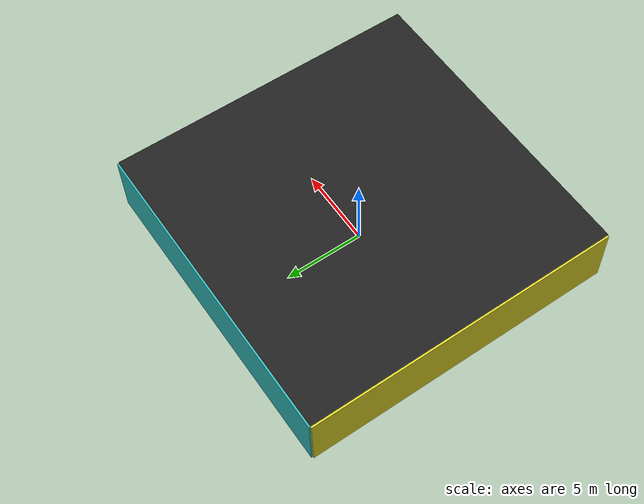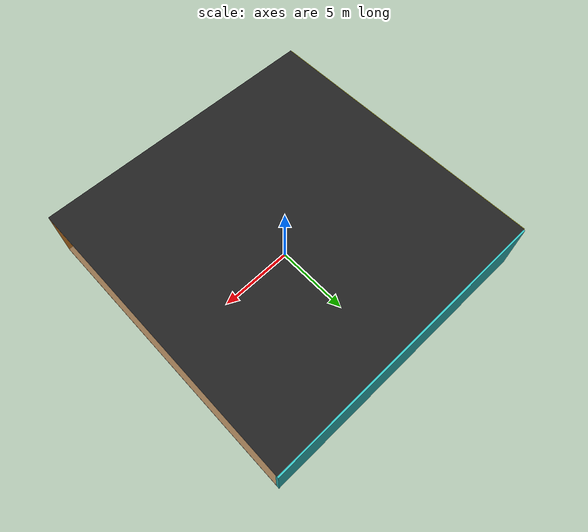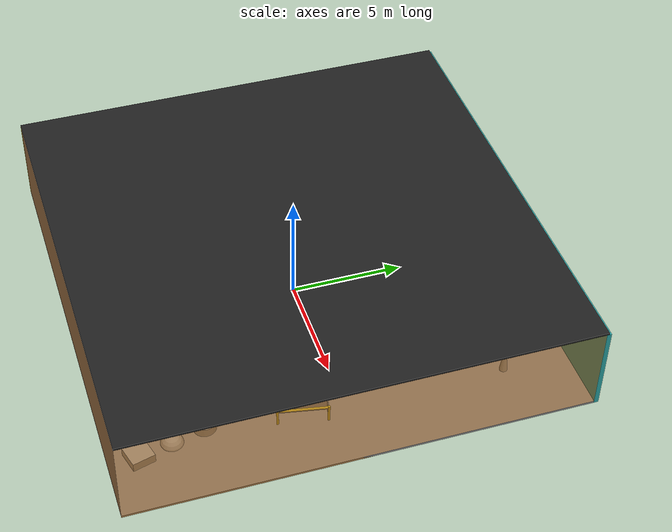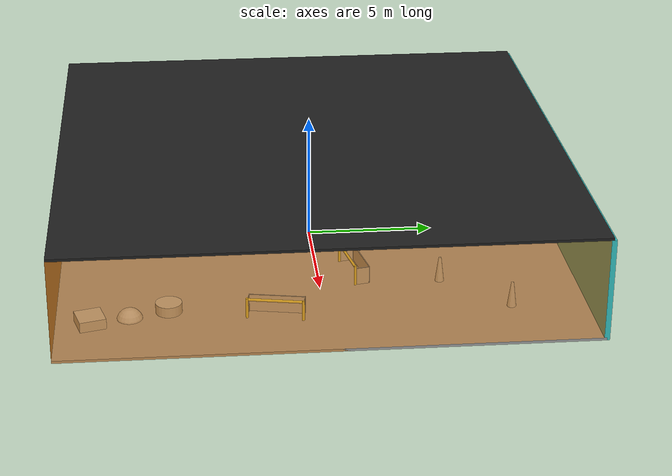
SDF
<sdf version="1.4">
 <world name="default">
  <physics type="ode">
   <max_step_size>0.001</max_step_size>
   <real_time_factor>1</real_time_factor>
   <real_time_update_rate>1000</real_time_update_rate>
   <gravity>0 0 -9.8</gravity>
  </physics>
  <scene><ambient>0.4 0.4 0.4 1</ambient><background>0.7 0.7 0.7 1</background><shadows>1</shadows></scene>
  <model name="Surrounding">
   <static>1</static>
   <link name="Ceiling">
    <collision name="Ceiling_Collision"><geometry><box><size>20 20 0.1</size></box></geometry></collision>
    <visual name="Ceiling_Visual">
     <geometry><box><size>20 20 0.1</size></box></geometry>
     <material>
      <script><uri>file://media/materials/scripts/gazebo.material</uri><name>Gazebo/FlatBlack</name></script>
     </material>
    </visual>
    <pose>0 0 4.05 0 0 0</pose>
   </link>
   <link name="Wall_South">
    <collision name="Wall_South_Collision">
     <geometry><box><size>20 0 4</size></box></geometry>
     <pose>0 0 2 0 -0 0</pose>
    </collision>
    <visual name="Wall_South_Visual">
     <pose>0 0 2 0 -0 0</pose>
     <geometry><box><size>20 0 4</size></box></geometry>
     <material>
      <script><uri>file://media/materials/scripts/gazebo.material</uri><name>Gazebo/Wood</name></script>
     </material>
    </visual>
    <velocity_decay><linear>0</linear><angular>0</angular></velocity_decay>
    <pose>0 -10 0 0 -0 0</pose>
   </link>
   <link name="Wall_East">
    <collision name="Wall_21_Collision">
     <geometry><box><size>20 0 4</size></box></geometry>
     <pose>0 0 2 0 -0 0</pose>
    </collision>
    <visual name="Wall_21_Visual">
     <pose>0 0 2 0 -0 0</pose>
     <geometry><box><size>20 0 4</size></box></geometry>
     <material>
      <script>
       <uri>file://media/materials/scripts/gazebo.material</uri>
       <name>Gazebo/OrangeTransparent</name>
      </script>
     </material>
    </visual>
    <velocity_decay><linear>0</linear><angular>0</angular></velocity_decay>
    <pose>10 0 0 0 -0 1.5708</pose>
   </link>
   <link name="Wall_North">
    <collision name="Wall_22_Collision">
     <geometry><box><size>20 0.2 4</size></box></geometry>
     <pose>0 0 2 0 -0 0</pose>
    </collision>
    <visual name="Wall_22_Visual">
     <pose>0 0 2 0 -0 0</pose>
     <geometry><box><size>20 0.2 4</size></box></geometry>
     <material>
      <script>
       <uri>file://media/materials/scripts/gazebo.material</uri>
       <name>Gazebo/TurquoiseGlowOutline</name>
      </script>
     </material>
    </visual>
    <velocity_decay><linear>0</linear><angular>0</angular></velocity_decay>
    <pose>0 10 0 0 -0 0</pose>
   </link>
   <link name="Wall_West">
    <collision name="Wall_23_Collision">
     <geometry><box><size>20 0.2 4</size></box></geometry>
     <pose>0 0 2 0 -0 0</pose>
    </collision>
    <visual name="Wall_23_Visual">
     <pose>0 0 2 0 -0 0</pose>
     <geometry><box><size>20 0.2 4</size></box></geometry>
     <material>
      <script><uri>file://media/materials/scripts/gazebo.material</uri><name>Gazebo/Yellow</name></script>
     </material>
    </visual>
    <velocity_decay><linear>0</linear><angular>0</angular></velocity_decay>
    <pose>-10 0 0 0 0 -1.5708</pose>
   </link>
   <link name="Ground_link">
    <collision name="collision">
     <pose>0 0 .05 0 -0 0</pose>
     <geometry><box><size>20 20 0.1</size></box></geometry>
    </collision>
    <visual name="visual">
     <pose>0 0 .05 0 -0 0</pose>
     <geometry><box><size>20 20 0.1</size></box></geometry>
     <material>
      <script><uri>file://media/materials/scripts/gazebo.material</uri><name>Gazebo/GreyGradientSky</name></script>
     </material>
    </visual>
   </link>
   <static>1</static>
  </model>
  <spherical_coordinates>
   <surface_model>EARTH_WGS84</surface_model>
   <latitude_deg>0</latitude_deg>
   <longitude_deg>0</longitude_deg>
   <elevation>0</elevation>
   <heading_deg>0</heading_deg>
  </spherical_coordinates>
  <light name="lightball_0" type="diffuse">
   <diffuse>0.8 0.8 0.8 1</diffuse>
   <specular>0.2 0.2 0.2 1</specular>
   <attenuation>
    <range>100</range>
    <constant>0.7</constant>
    <linear>0.01</linear>
    <quadratic>0.001</quadratic>
   </attenuation>
   <direction>-0.5 0.1 -0.9</direction>
   <pose>-5.14017831625 -4.27249657197 1.27322324867 0 0 0</pose>
  </light>
  <light name="lightball_1" type="diffuse">
   <diffuse>0.8 0.8 0.8 1</diffuse>
   <specular>0.2 0.2 0.2 1</specular>
   <attenuation>
    <range>100</range>
    <constant>0.7</constant>
    <linear>0.01</linear>
    <quadratic>0.001</quadratic>
   </attenuation>
   <direction>-0.5 0.1 -0.9</direction>
   <pose>-0.597580077973 1.82642345755 0.887052831173 0 0 0</pose>
  </light>
  <light name="lightball_2" type="diffuse">
   <diffuse>0.8 0.8 0.8 1</diffuse>
   <specular>0.2 0.2 0.2 1</specular>
   <attenuation>
    <range>100</range>
    <constant>0.7</constant>
    <linear>0.01</linear>
    <quadratic>0.001</quadratic>
   </attenuation>
   <direction>-0.5 0.1 -0.9</direction>
   <pose>-9.74661896728 -8.52290963935 3.12673441178 0 0 0</pose>
  </light>
  <light name="lightball_3" type="diffuse">
   <diffuse>0.8 0.8 0.8 1</diffuse>
   <specular>0.2 0.2 0.2 1</specular>
   <attenuation>
    <range>100</range>
    <constant>0.7</constant>
    <linear>0.01</linear>
    <quadratic>0.001</quadratic>
   </attenuation>
   <direction>-0.5 0.1 -0.9</direction>
   <pose>-7.01953836687 4.78623947196 3.08654900594 0 0 0</pose>
  </light>
  <light name="lightball_4" type="diffuse">
   <diffuse>0.8 0.8 0.8 1</diffuse>
   <specular>0.2 0.2 0.2 1</specular>
   <attenuation>
    <range>100</range>
    <constant>0.7</constant>
    <linear>0.01</linear>
    <quadratic>0.001</quadratic>
   </attenuation>
   <direction>-0.5 0.1 -0.9</direction>
   <pose>7.13265617877 1.8384580934 2.3044151431 0 0 0</pose>
  </light>
  <include><uri>model://cabinet</uri><pose>-4.8362791208 6.79944097451 0 0 0 1.01818974643</pose></include>
  <include>
   <uri>model://robocup_3Dsim_goal</uri>
   <pose>3.9853331442 1.15945937086 0 0 0 1.76228556469</pose>
  </include>
  <include>
   <uri>model://construction_cone</uri>
   <pose>4.92166051111 4.63921334147 0 0 0 1.12498613592</pose>
  </include>
  <include>
   <uri>model://textured_shapes</uri>
   <pose>7.01969642489 -7.25881093414 0 0 0 0.261522187413</pose>
  </include>
  <include>
   <uri>model://robocup_3Dsim_goal</uri>
   <pose>7.53101639997 -1.89296400878 0 0 0 2.95496905254</pose>
  </include>
  <include>
   <uri>model://construction_cone</uri>
   <pose>7.23228946453 7.01880744091 0 0 0 0.536358343358</pose>
  </include>
 </world>
</sdf>

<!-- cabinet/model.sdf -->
<sdf version="1.5">
  <model name="cabinet">
    <static>true</static>
    <link name="cabinet_bottom_plate">
      <inertial>
        <pose>0 0 -1 0 0 0</pose>
        <inertia>
          <ixx>2.050000</ixx>
          <ixy>0</ixy>
          <ixz>0</ixz>
          <iyy>2.050000</iyy>
          <iyz>0</iyz>
          <izz>2.050000</izz>
        </inertia>
        <mass>25.000000</mass>
      </inertial>
      <collision name="cabinet_bottom_plate_geom">
        <pose>0 0 0.010000 0 0 0</pose>
        <geometry>
          <box>
            <size>0.450000 0.450000 0.020000</size>
          </box>
        </geometry>
      </collision>
      <visual name="cabinet_bottom_plate_geom_visual">
        <pose>0 0 0.010000 0 0 0</pose>
        <geometry>
          <box>
            <size>0.450000 0.450000 0.020000</size>
          </box>
        </geometry>
        <material>
          <script>
            <uri>model://media/materials/scripts/gazebo.material</uri>
            <name>Gazebo/Wood</name>
          </script>
        </material>
      </visual>
      <collision name="cabinet_bottom_plate_geom_cabinet_back_plate">
        <pose>0.235000 0 0.510000 0 0 0</pose>
        <geometry>
          <box>
            <size>0.020000 0.450000 1.020000</size>
          </box>
        </geometry>
      </collision>
      <visual name="cabinet_bottom_plate_geom_cabinet_back_plate_visual">
        <pose>0.235000 0 0.510000 0 0 0</pose>
        <geometry>
          <box>
            <size>0.020000 0.450000 1.020000</size>
          </box>
        </geometry>
        <material>
          <script>
            <uri>model://media/materials/scripts/gazebo.material</uri>
            <name>Gazebo/Wood</name>
          </script>
        </material>
      </visual>
      <collision name="cabinet_bottom_plate_geom_cabinet_left_plate">
        <pose>0 0.235000 0.510000 0 0 0</pose>
        <geometry>
          <box>
            <size>0.450000 0.020000 1.020000</size>
          </box>
        </geometry>
      </collision>
      <visual name="cabinet_bottom_plate_geom_cabinet_left_plate_visual">
        <pose>0 0.235000 0.510000 0 0 0</pose>
        <geometry>
          <box>
            <size>0.450000 0.020000 1.020000</size>
          </box>
        </geometry>
        <material>
          <script>
            <uri>model://media/materials/scripts/gazebo.material</uri>
            <name>Gazebo/Wood</name>
          </script>
        </material>
      </visual>
      <collision name="cabinet_bottom_plate_geom_cabinet_middle_plate">
        <pose>0 0 0.510000 0 0 0</pose>
        <geometry>
          <box>
            <size>0.450000 0.450000 0.020000</size>
          </box>
        </geometry>
      </collision>
      <visual name="cabinet_bottom_plate_geom_cabinet_middle_plate_visual">
        <pose>0 0 0.510000 0 0 0</pose>
        <geometry>
          <box>
            <size>0.450000 0.450000 0.020000</size>
          </box>
        </geometry>
        <material>
          <script>
            <uri>model://media/materials/scripts/gazebo.material</uri>
            <name>Gazebo/Wood</name>
          </script>
        </material>
      </visual>
      <collision name="cabinet_bottom_plate_geom_cabinet_right_plate">
        <pose>0 -0.235000 0.510000 0 0 0</pose>
        <geometry>
          <box>
            <size>0.450000 0.020000 1.020000</size>
          </box>
        </geometry>
      </collision>
      <visual name="cabinet_bottom_plate_geom_cabinet_right_plate_visual">
        <pose>0 -0.235000 0.510000 0 0 0</pose>
        <geometry>
          <box>
            <size>0.450000 0.020000 1.020000</size>
          </box>
        </geometry>
        <material>
          <script>
            <uri>model://media/materials/scripts/gazebo.material</uri>
            <name>Gazebo/Wood</name>
          </script>
        </material>
      </visual>
      <collision name="cabinet_bottom_plate_geom_cabinet_top_plate">
        <pose>0 0 1.010000 0 0 0</pose>
        <geometry>
          <box>
            <size>0.450000 0.450000 0.020000</size>
          </box>
        </geometry>
      </collision>
      <visual name="cabinet_bottom_plate_geom_cabinet_top_plate_visual">
        <pose>0 0 1.010000 0 0 0</pose>
        <geometry>
          <box>
            <size>0.450000 0.450000 0.020000</size>
          </box>
        </geometry>
        <material>
          <script>
            <uri>model://media/materials/scripts/gazebo.material</uri>
            <name>Gazebo/Wood</name>
          </script>
        </material>
      </visual>
    </link>
  </model>
</sdf>

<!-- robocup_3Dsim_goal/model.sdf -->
<sdf version="1.5">
  <model name="robocup_3d_goal">
    <static>true</static>
    <link name="left_post">
      <pose>0 1.05 0.45 0 0 0</pose>
      <collision name="collision">
        <geometry>
          <cylinder>
            <radius>0.05</radius>
            <length>0.9</length>
          </cylinder>
        </geometry>
      </collision>
      <visual name="visual">
        <geometry>
          <cylinder>
            <radius>0.05</radius>
            <length>0.9</length>
          </cylinder>
        </geometry>
        <material>
          <script>
            <uri>file://media/materials/scripts/gazebo.material</uri>
            <name>Gazebo/ZincYellow</name>
          </script>
        </material>
      </visual>
    </link>
    <link name="left_support_horiz_lower">
      <pose>0.30 1.05 0.01 0 0 0</pose>
      <collision name="collision">
        <geometry>
          <box>
            <size>0.50 0.02 0.02</size>
          </box>
        </geometry>
      </collision>
      <visual name="visual">
        <geometry>
          <box>
            <size>0.50 0.02 0.02</size>
          </box>
        </geometry>
        <material>
          <script>
            <uri>file://media/materials/scripts/gazebo.material</uri>
            <name>Gazebo/White</name>
          </script>
        </material>
      </visual>
    </link>
    <link name="left_support_horiz_upper">
      <pose>0.30 1.05 0.79 0 0 0</pose>
      <collision name="collision">
        <geometry>
          <box>
            <size>0.50 0.02 0.02</size>
          </box>
        </geometry>
      </collision>
      <visual name="visual">
        <geometry>
          <box>
            <size>0.50 0.02 0.02</size>
          </box>
        </geometry>
        <material>
          <script>
            <uri>file://media/materials/scripts/gazebo.material</uri>
            <name>Gazebo/White</name>
          </script>
        </material>
      </visual>
    </link>
    <link name="left_support_vertical">
      <pose>0.56 1.05 0.4 0 1.5708 0</pose>
      <collision name="collision">
        <geometry>
          <box>
            <size>0.80 0.02 0.02</size>
          </box>
        </geometry>
      </collision>
      <visual name="visual">
        <geometry>
          <box>
            <size>0.80 0.02 0.02</size>
          </box>
        </geometry>
        <material>
          <script>
            <uri>file://media/materials/scripts/gazebo.material</uri>
            <name>Gazebo/White</name>
          </script>
        </material>
      </visual>
    </link>
    <link name="right_support_horiz_lower">
      <pose>0.30 -1.05 0.01 0 0 0</pose>
      <collision name="collision">
        <geometry>
          <box>
            <size>0.50 0.02 0.02</size>
          </box>
        </geometry>
      </collision>
      <visual name="visual">
        <geometry>
          <box>
            <size>0.50 0.02 0.02</size>
          </box>
        </geometry>
        <material>
          <script>
            <uri>file://media/materials/scripts/gazebo.material</uri>
            <name>Gazebo/White</name>
          </script>
        </material>
      </visual>
    </link>
    <link name="right_support_horiz_upper">
      <pose>0.30 -1.05 0.79 0 0 0</pose>
      <collision name="collision">
        <geometry>
          <box>
            <size>0.50 0.02 0.02</size>
          </box>
        </geometry>
      </collision>
      <visual name="visual">
        <geometry>
          <box>
            <size>0.50 0.02 0.02</size>
          </box>
        </geometry>
        <material>
          <script>
            <uri>file://media/materials/scripts/gazebo.material</uri>
            <name>Gazebo/White</name>
          </script>
        </material>
      </visual>
    </link>
    <link name="right_support_vertical">
      <pose>0.56 -1.05 0.4 0 1.5708 0</pose>
      <collision name="collision">
        <geometry>
          <box>
            <size>0.80 0.02 0.02</size>
          </box>
        </geometry>
      </collision>
      <visual name="visual">
        <geometry>
          <box>
            <size>0.80 0.02 0.02</size>
          </box>
        </geometry>
        <material>
          <script>
            <uri>file://media/materials/scripts/gazebo.material</uri>
            <name>Gazebo/White</name>
          </script>
        </material>
      </visual>
    </link>
    <link name="center_support_horiz_lower">
      <pose>0.56 0 0.01 0 1.5708 0</pose>
      <collision name="collision">
        <geometry>
          <box>
            <size>0.02 2.08 0.02</size>
          </box>
        </geometry>
      </collision>
      <visual name="visual">
        <geometry>
          <box>
            <size>0.02 2.08 0.02</size>
          </box>
        </geometry>
        <material>
          <script>
            <uri>file://media/materials/scripts/gazebo.material</uri>
            <name>Gazebo/White</name>
          </script>
        </material>
      </visual>
    </link>
    <link name="center_support_horiz_upper">
      <pose>0.56 0 0.79 0 1.5708 0</pose>
      <collision name="collision">
        <geometry>
          <box>
            <size>0.02 2.08 0.02</size>
          </box>
        </geometry>
      </collision>
      <visual name="visual">
        <geometry>
          <box>
            <size>0.02 2.08 0.02</size>
          </box>
        </geometry>
        <material>
          <script>
            <uri>file://media/materials/scripts/gazebo.material</uri>
            <name>Gazebo/White</name>
          </script>
        </material>
      </visual>
    </link>
    <link name="right_post">
      <pose>0 -1.05 0.45 0 0 0</pose>
      <collision name="collision">
        <geometry>
          <cylinder>
            <radius>0.05</radius>
            <length>0.9</length>
          </cylinder>
        </geometry>
      </collision>
      <visual name="visual">
        <geometry>
          <cylinder>
            <radius>0.05</radius>
            <length>0.9</length>
          </cylinder>
        </geometry>
        <material>
          <script>
            <uri>file://media/materials/scripts/gazebo.material</uri>
            <name>Gazebo/ZincYellow</name>
          </script>
        </material>
      </visual>
    </link>
    <link name="crossbar">
      <pose>0 0 0.85 1.57 1.57 0</pose>
      <collision name="collision">
        <geometry>
          <cylinder>
            <radius>0.05</radius>
            <length>2.0</length>
          </cylinder>
        </geometry>
      </collision>
      <visual name="visual">
        <geometry>
          <cylinder>
            <radius>0.05</radius>
            <length>2.0</length>
          </cylinder>
        </geometry>
        <material>
          <script>
            <uri>file://media/materials/scripts/gazebo.material</uri>
            <name>Gazebo/ZincYellow</name>
          </script>
        </material>
      </visual>
    </link>
    <link name="center_net">
      <pose>0.56 0 0.40 0 0 0</pose>
      <collision name="collision">
        <geometry>
          <box>
            <size>0.01 2.1 0.80</size>
          </box>
        </geometry>
      </collision>
      <visual name="visual">
        <geometry>
          <box>
            <size>0.01 2.1 0.80</size>
          </box>
        </geometry>
        <material>
          <script>
            <uri>model://../model_source/models/robocup09_spl_field/materials/scripts/</uri>
            <uri>model://../model_source/models/robocup09_spl_field/materials/textures/</uri>
            <name>RoboCup/Net</name>
          </script>
        </material>
      </visual>
    </link>
    <link name="left_net">
      <pose>0.30 1.05 0.40 0 0 0</pose>
      <collision name="collision">
        <geometry>
          <box>
            <size>0.50 0.01 0.76</size>
          </box>
        </geometry>
      </collision>
      <visual name="visual">
        <geometry>
          <box>
            <size>0.50 0.01 0.76</size>
          </box>
        </geometry>
        <material>
          <script>
            <uri>model://../model_source/models/robocup09_spl_field/materials/scripts/</uri>
            <uri>model://../model_source/models/robocup09_spl_field/materials/textures/</uri>
            <name>RoboCup/Net</name>
          </script>
        </material>
      </visual>
    </link>
    <link name="right_net">
      <pose>0.30 -1.05 0.40 0 0 0</pose>
      <collision name="collision">
        <geometry>
          <box>
            <size>0.50 0.01 0.76</size>
          </box>
        </geometry>
      </collision>
      <visual name="visual">
        <geometry>
          <box>
            <size>0.50 0.01 0.76</size>
          </box>
        </geometry>
        <material>
          <script>
            <uri>model://../model_source/models/robocup09_spl_field/materials/scripts/</uri>
            <uri>model://../model_source/models/robocup09_spl_field/materials/textures/</uri>
            <name>RoboCup/Net</name>
          </script>
        </material>
      </visual>
    </link>
  </model>
</sdf>

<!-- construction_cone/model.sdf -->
<sdf version="1.5">
  <model name="Construction Cone">
    <link name="link">
      <collision name="collision">
        <geometry>
          <mesh>
            <scale>10 10 10</scale>
            <uri>file://isr-testbed/construction_cone/meshes/construction_cone.dae</uri>
          </mesh>
        </geometry>
      </collision>
      <visual name="visual">
        <geometry>
          <mesh>
            <scale>10 10 10</scale>
            <uri>file://isr-testbed/construction_cone/meshes/construction_cone.dae</uri>
          </mesh>
        </geometry>
      </visual>
    </link>
  </model>
</sdf>

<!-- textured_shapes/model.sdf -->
<sdf version="1.6">
  <model name="textured_shapes">
    <pose>0 0 0.5 0 0 0</pose>
    <link name="box">
      <pose>0 -1.5 0 0 0 0</pose>
      <collision name="collision">
        <geometry>
          <box>
            <size>1 1 1</size>
          </box>
        </geometry>
      </collision>
      <visual name="visual">
        <geometry>
          <box>
            <size>1 1 1</size>
          </box>
        </geometry>
        <material>
          <script>
            <uri>model://../model_source/models/textured_shapes/materials/scripts</uri>
            <uri>model://../model_source/models/textured_shapes/materials/textures</uri>
            <name>TexturedShape/Squares</name>
          </script>
        </material>
      </visual>
    </link>
    <link name="sphere">
      <collision name="collision">
        <geometry>
          <sphere>
            <radius>0.5</radius>
          </sphere>
        </geometry>
      </collision>
      <visual name="visual">
        <geometry>
          <sphere>
            <radius>0.5</radius>
          </sphere>
        </geometry>
        <material>
          <script>
            <uri>model://../model_source/models/textured_shapes/materials/scripts</uri>
            <uri>model://../model_source/models/textured_shapes/materials/textures</uri>
            <name>TexturedShape/Squares</name>
          </script>
        </material>
      </visual>
    </link>
    <link name="cylinder">
      <pose>0 1.5 0 0 0 0</pose>
      <collision name="collision">
        <geometry>
          <cylinder>
            <radius>0.5</radius>
            <length>1</length>
          </cylinder>
        </geometry>
      </collision>
      <visual name="visual">
        <geometry>
          <cylinder>
            <radius>0.5</radius>
            <length>1</length>
          </cylinder>
        </geometry>
        <material>
          <script>
            <uri>model://../model_source/models/textured_shapes/materials/scripts</uri>
            <uri>model://../model_source/models/textured_shapes/materials/textures</uri>
            <name>TexturedShape/Squares</name>
          </script>
        </material>
      </visual>
    </link>
  </model>
</sdf>
